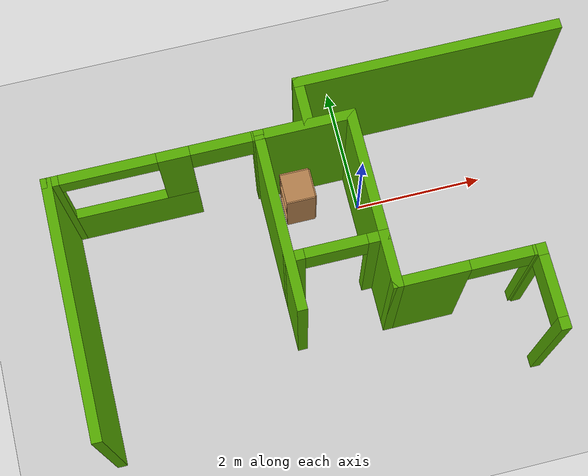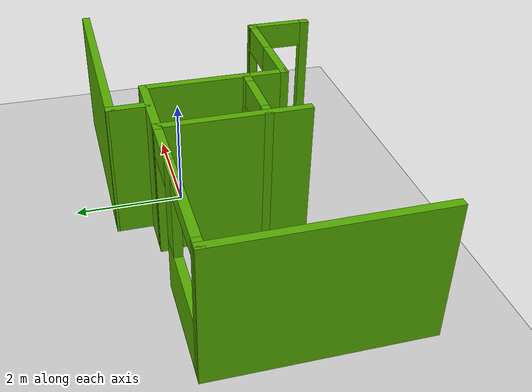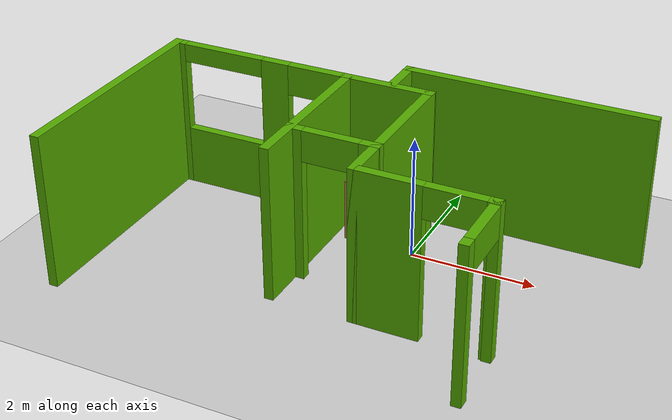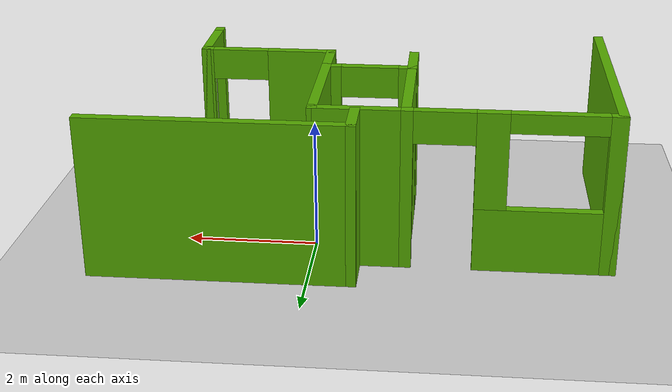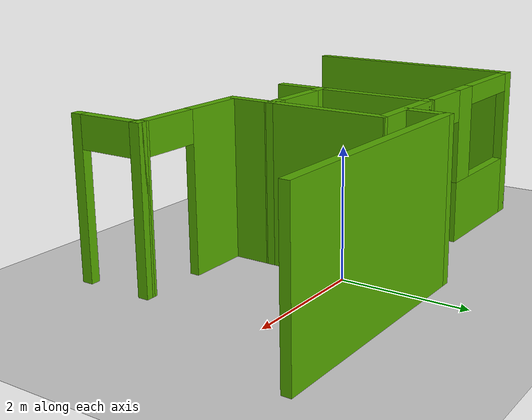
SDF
<sdf version="1.6">
 <world name="default">
  <model name="ground_plane">
   <static>1</static>
   <link name="link">
    <collision name="collision">
     <geometry><plane><normal>0 0 1</normal><size>100 100</size></plane></geometry>
     <surface><friction><ode><mu>100</mu><mu2>50</mu2></ode></friction></surface>
    </collision>
    <visual name="visual">
     <cast_shadows>0</cast_shadows>
     <geometry><plane><normal>0 0 1</normal><size>100 100</size></plane></geometry>
     <material>
      <script><uri>file://media/materials/scripts/gazebo.material</uri><name>Gazebo/Grey</name></script>
     </material>
    </visual>
   </link>
  </model>
  <model name="1floorHouse">
   <link name="Wall_303">
    <pose>-8.69021 3.385 0 0 -0 1.5708</pose>
    <visual name="Wall_303_Visual">
     <pose>0 0 1.25 0 -0 0</pose>
     <geometry><box><size>3.8 0.15 2.5</size></box></geometry>
     <material>
      <script><uri>file://media/materials/scripts/gazebo.material</uri><name>Gazebo/Grey</name></script>
      <ambient>0.333333 0.666667 0 1</ambient>
      <diffuse>0.7 0.7 0.7 1</diffuse>
      <specular>0.01 0.01 0.01 1</specular>
      <emissive>0 0 0 1</emissive>
     </material>
    </visual>
    <collision name="Wall_303_Collision">
     <pose>0 0 1.25 0 -0 0</pose>
     <geometry><box><size>3.8 0.15 2.5</size></box></geometry>
     <surface>
      <friction>
       <ode><mu>1</mu><mu2>1</mu2><fdir1>0 0 0</fdir1><slip1>0</slip1><slip2>0</slip2></ode>
       <torsional>
        <coefficient>1</coefficient>
        <patch_radius>0</patch_radius>
        <surface_radius>0</surface_radius>
        <use_patch_radius>1</use_patch_radius>
        <ode><slip>0</slip></ode>
       </torsional>
      </friction>
      <bounce><restitution_coefficient>0</restitution_coefficient><threshold>1e+06</threshold></bounce>
      <contact>
       <collide_without_contact>0</collide_without_contact>
       <collide_without_contact_bitmask>1</collide_without_contact_bitmask>
       <collide_bitmask>1</collide_bitmask>
       <ode>
        <soft_cfm>0</soft_cfm>
        <soft_erp>0.2</soft_erp>
        <kp>1e+13</kp>
        <kd>1</kd>
        <max_vel>0.01</max_vel>
        <min_depth>0</min_depth>
       </ode>
       <bullet>
        <split_impulse>1</split_impulse>
        <split_impulse_penetration_threshold>-0.01</split_impulse_penetration_threshold>
        <soft_cfm>0</soft_cfm>
        <soft_erp>0.2</soft_erp>
        <kp>1e+13</kp>
        <kd>1</kd>
       </bullet>
      </contact>
     </surface>
    </collision>
   </link>
   <link name="Wall_304">
    <pose>-7.16521 5.21 0 0 -0 0</pose>
    <visual name="Wall_304_Visual_0">
     <pose>-1.47576 0 1.25 0 -0 0</pose>
     <geometry><box><size>0.248475 0.15 2.5</size></box></geometry>
     <material>
      <script><uri>file://media/materials/scripts/gazebo.material</uri><name>Gazebo/Grey</name></script>
      <ambient>0.333333 0.666667 0 1</ambient>
      <diffuse>0.7 0.7 0.7 1</diffuse>
      <specular>0.01 0.01 0.01 1</specular>
      <emissive>0 0 0 1</emissive>
     </material>
    </visual>
    <visual name="Wall_304_Visual_2">
     <pose>-0.414623 0 0.5 0 -0 0</pose>
     <geometry><box><size>1.8738 0.15 1</size></box></geometry>
     <material>
      <script><uri>file://media/materials/scripts/gazebo.material</uri><name>Gazebo/Grey</name></script>
      <ambient>0.333333 0.666667 0 1</ambient>
      <diffuse>0.7 0.7 0.7 1</diffuse>
      <specular>0.01 0.01 0.01 1</specular>
      <emissive>0 0 0 1</emissive>
     </material>
    </visual>
    <visual name="Wall_304_Visual_1">
     <pose>1.51114 0 1.25 0 -0 0</pose>
     <geometry><box><size>0.177722 0.15 2.5</size></box></geometry>
     <material>
      <script><uri>file://media/materials/scripts/gazebo.material</uri><name>Gazebo/Grey</name></script>
      <ambient>0.333333 0.666667 0 1</ambient>
      <diffuse>0.7 0.7 0.7 1</diffuse>
      <specular>0.01 0.01 0.01 1</specular>
      <emissive>0 0 0 1</emissive>
     </material>
    </visual>
    <visual name="Wall_304_Visual_3">
     <pose>0.285377 0 1.75 0 -0 0</pose>
     <geometry><box><size>0.473803 0.15 1.5</size></box></geometry>
     <material>
      <script><uri>file://media/materials/scripts/gazebo.material</uri><name>Gazebo/Grey</name></script>
      <ambient>0.333333 0.666667 0 1</ambient>
      <diffuse>0.7 0.7 0.7 1</diffuse>
      <specular>0.01 0.01 0.01 1</specular>
      <emissive>0 0 0 1</emissive>
     </material>
    </visual>
    <visual name="Wall_304_Visual_4">
     <pose>0.972278 0 2.25 0 -0 0</pose>
     <geometry><box><size>0.9 0.15 0.5</size></box></geometry>
     <material>
      <script><uri>file://media/materials/scripts/gazebo.material</uri><name>Gazebo/Grey</name></script>
      <ambient>0.333333 0.666667 0 1</ambient>
      <diffuse>0.7 0.7 0.7 1</diffuse>
      <specular>0.01 0.01 0.01 1</specular>
      <emissive>0 0 0 1</emissive>
     </material>
    </visual>
    <visual name="Wall_304_Visual_5">
     <pose>-0.651525 0 2.35 0 -0 0</pose>
     <geometry><box><size>1.4 0.15 0.3</size></box></geometry>
     <material>
      <script><uri>file://media/materials/scripts/gazebo.material</uri><name>Gazebo/Grey</name></script>
      <ambient>0.333333 0.666667 0 1</ambient>
      <diffuse>0.7 0.7 0.7 1</diffuse>
      <specular>0.01 0.01 0.01 1</specular>
      <emissive>0 0 0 1</emissive>
     </material>
    </visual>
    <collision name="Wall_304_Collision_0">
     <pose>-1.47576 0 1.25 0 -0 0</pose>
     <geometry><box><size>0.248475 0.15 2.5</size></box></geometry>
     <surface>
      <friction>
       <ode><mu>1</mu><mu2>1</mu2><fdir1>0 0 0</fdir1><slip1>0</slip1><slip2>0</slip2></ode>
       <torsional>
        <coefficient>1</coefficient>
        <patch_radius>0</patch_radius>
        <surface_radius>0</surface_radius>
        <use_patch_radius>1</use_patch_radius>
        <ode><slip>0</slip></ode>
       </torsional>
      </friction>
      <bounce><restitution_coefficient>0</restitution_coefficient><threshold>1e+06</threshold></bounce>
      <contact>
       <collide_without_contact>0</collide_without_contact>
       <collide_without_contact_bitmask>1</collide_without_contact_bitmask>
       <collide_bitmask>1</collide_bitmask>
       <ode>
        <soft_cfm>0</soft_cfm>
        <soft_erp>0.2</soft_erp>
        <kp>1e+13</kp>
        <kd>1</kd>
        <max_vel>0.01</max_vel>
        <min_depth>0</min_depth>
       </ode>
       <bullet>
        <split_impulse>1</split_impulse>
        <split_impulse_penetration_threshold>-0.01</split_impulse_penetration_threshold>
        <soft_cfm>0</soft_cfm>
        <soft_erp>0.2</soft_erp>
        <kp>1e+13</kp>
        <kd>1</kd>
       </bullet>
      </contact>
     </surface>
    </collision>
    <collision name="Wall_304_Collision_1">
     <pose>1.51114 0 1.25 0 -0 0</pose>
     <geometry><box><size>0.177722 0.15 2.5</size></box></geometry>
     <surface>
      <friction>
       <ode><mu>1</mu><mu2>1</mu2><fdir1>0 0 0</fdir1><slip1>0</slip1><slip2>0</slip2></ode>
       <torsional>
        <coefficient>1</coefficient>
        <patch_radius>0</patch_radius>
        <surface_radius>0</surface_radius>
        <use_patch_radius>1</use_patch_radius>
        <ode><slip>0</slip></ode>
       </torsional>
      </friction>
      <bounce><restitution_coefficient>0</restitution_coefficient><threshold>1e+06</threshold></bounce>
      <contact>
       <collide_without_contact>0</collide_without_contact>
       <collide_without_contact_bitmask>1</collide_without_contact_bitmask>
       <collide_bitmask>1</collide_bitmask>
       <ode>
        <soft_cfm>0</soft_cfm>
        <soft_erp>0.2</soft_erp>
        <kp>1e+13</kp>
        <kd>1</kd>
        <max_vel>0.01</max_vel>
        <min_depth>0</min_depth>
       </ode>
       <bullet>
        <split_impulse>1</split_impulse>
        <split_impulse_penetration_threshold>-0.01</split_impulse_penetration_threshold>
        <soft_cfm>0</soft_cfm>
        <soft_erp>0.2</soft_erp>
        <kp>1e+13</kp>
        <kd>1</kd>
       </bullet>
      </contact>
     </surface>
    </collision>
    <collision name="Wall_304_Collision_2">
     <pose>-0.414623 0 0.5 0 -0 0</pose>
     <geometry><box><size>1.8738 0.15 1</size></box></geometry>
     <surface>
      <friction>
       <ode><mu>1</mu><mu2>1</mu2><fdir1>0 0 0</fdir1><slip1>0</slip1><slip2>0</slip2></ode>
       <torsional>
        <coefficient>1</coefficient>
        <patch_radius>0</patch_radius>
        <surface_radius>0</surface_radius>
        <use_patch_radius>1</use_patch_radius>
        <ode><slip>0</slip></ode>
       </torsional>
      </friction>
      <bounce><restitution_coefficient>0</restitution_coefficient><threshold>1e+06</threshold></bounce>
      <contact>
       <collide_without_contact>0</collide_without_contact>
       <collide_without_contact_bitmask>1</collide_without_contact_bitmask>
       <collide_bitmask>1</collide_bitmask>
       <ode>
        <soft_cfm>0</soft_cfm>
        <soft_erp>0.2</soft_erp>
        <kp>1e+13</kp>
        <kd>1</kd>
        <max_vel>0.01</max_vel>
        <min_depth>0</min_depth>
       </ode>
       <bullet>
        <split_impulse>1</split_impulse>
        <split_impulse_penetration_threshold>-0.01</split_impulse_penetration_threshold>
        <soft_cfm>0</soft_cfm>
        <soft_erp>0.2</soft_erp>
        <kp>1e+13</kp>
        <kd>1</kd>
       </bullet>
      </contact>
     </surface>
    </collision>
    <collision name="Wall_304_Collision_3">
     <pose>0.285377 0 1.75 0 -0 0</pose>
     <geometry><box><size>0.473803 0.15 1.5</size></box></geometry>
     <surface>
      <friction>
       <ode><mu>1</mu><mu2>1</mu2><fdir1>0 0 0</fdir1><slip1>0</slip1><slip2>0</slip2></ode>
       <torsional>
        <coefficient>1</coefficient>
        <patch_radius>0</patch_radius>
        <surface_radius>0</surface_radius>
        <use_patch_radius>1</use_patch_radius>
        <ode><slip>0</slip></ode>
       </torsional>
      </friction>
      <bounce><restitution_coefficient>0</restitution_coefficient><threshold>1e+06</threshold></bounce>
      <contact>
       <collide_without_contact>0</collide_without_contact>
       <collide_without_contact_bitmask>1</collide_without_contact_bitmask>
       <collide_bitmask>1</collide_bitmask>
       <ode>
        <soft_cfm>0</soft_cfm>
        <soft_erp>0.2</soft_erp>
        <kp>1e+13</kp>
        <kd>1</kd>
        <max_vel>0.01</max_vel>
        <min_depth>0</min_depth>
       </ode>
       <bullet>
        <split_impulse>1</split_impulse>
        <split_impulse_penetration_threshold>-0.01</split_impulse_penetration_threshold>
        <soft_cfm>0</soft_cfm>
        <soft_erp>0.2</soft_erp>
        <kp>1e+13</kp>
        <kd>1</kd>
       </bullet>
      </contact>
     </surface>
    </collision>
    <collision name="Wall_304_Collision_4">
     <pose>0.972278 0 2.25 0 -0 0</pose>
     <geometry><box><size>0.9 0.15 0.5</size></box></geometry>
     <surface>
      <friction>
       <ode><mu>1</mu><mu2>1</mu2><fdir1>0 0 0</fdir1><slip1>0</slip1><slip2>0</slip2></ode>
       <torsional>
        <coefficient>1</coefficient>
        <patch_radius>0</patch_radius>
        <surface_radius>0</surface_radius>
        <use_patch_radius>1</use_patch_radius>
        <ode><slip>0</slip></ode>
       </torsional>
      </friction>
      <bounce><restitution_coefficient>0</restitution_coefficient><threshold>1e+06</threshold></bounce>
      <contact>
       <collide_without_contact>0</collide_without_contact>
       <collide_without_contact_bitmask>1</collide_without_contact_bitmask>
       <collide_bitmask>1</collide_bitmask>
       <ode>
        <soft_cfm>0</soft_cfm>
        <soft_erp>0.2</soft_erp>
        <kp>1e+13</kp>
        <kd>1</kd>
        <max_vel>0.01</max_vel>
        <min_depth>0</min_depth>
       </ode>
       <bullet>
        <split_impulse>1</split_impulse>
        <split_impulse_penetration_threshold>-0.01</split_impulse_penetration_threshold>
        <soft_cfm>0</soft_cfm>
        <soft_erp>0.2</soft_erp>
        <kp>1e+13</kp>
        <kd>1</kd>
       </bullet>
      </contact>
     </surface>
    </collision>
    <collision name="Wall_304_Collision_5">
     <pose>-0.651525 0 2.35 0 -0 0</pose>
     <geometry><box><size>1.4 0.15 0.3</size></box></geometry>
     <surface>
      <friction>
       <ode><mu>1</mu><mu2>1</mu2><fdir1>0 0 0</fdir1><slip1>0</slip1><slip2>0</slip2></ode>
       <torsional>
        <coefficient>1</coefficient>
        <patch_radius>0</patch_radius>
        <surface_radius>0</surface_radius>
        <use_patch_radius>1</use_patch_radius>
        <ode><slip>0</slip></ode>
       </torsional>
      </friction>
      <bounce><restitution_coefficient>0</restitution_coefficient><threshold>1e+06</threshold></bounce>
      <contact>
       <collide_without_contact>0</collide_without_contact>
       <collide_without_contact_bitmask>1</collide_without_contact_bitmask>
       <collide_bitmask>1</collide_bitmask>
       <ode>
        <soft_cfm>0</soft_cfm>
        <soft_erp>0.2</soft_erp>
        <kp>1e+13</kp>
        <kd>1</kd>
        <max_vel>0.01</max_vel>
        <min_depth>0</min_depth>
       </ode>
       <bullet>
        <split_impulse>1</split_impulse>
        <split_impulse_penetration_threshold>-0.01</split_impulse_penetration_threshold>
        <soft_cfm>0</soft_cfm>
        <soft_erp>0.2</soft_erp>
        <kp>1e+13</kp>
        <kd>1</kd>
       </bullet>
      </contact>
     </surface>
    </collision>
   </link>
   <link name="Wall_305">
    <pose>-5.6402 3.935 0 0 0 -1.5708</pose>
    <visual name="Wall_305_Visual">
     <pose>0 0 1.25 0 -0 0</pose>
     <geometry><box><size>2.7 0.15 2.5</size></box></geometry>
     <material>
      <script><uri>file://media/materials/scripts/gazebo.material</uri><name>Gazebo/Grey</name></script>
      <ambient>0.333333 0.666667 0 1</ambient>
      <diffuse>0.7 0.7 0.7 1</diffuse>
      <specular>0.01 0.01 0.01 1</specular>
      <emissive>0 0 0 1</emissive>
     </material>
    </visual>
    <collision name="Wall_305_Collision">
     <pose>0 0 1.25 0 -0 0</pose>
     <geometry><box><size>2.7 0.15 2.5</size></box></geometry>
     <surface>
      <friction>
       <ode><mu>1</mu><mu2>1</mu2><fdir1>0 0 0</fdir1><slip1>0</slip1><slip2>0</slip2></ode>
       <torsional>
        <coefficient>1</coefficient>
        <patch_radius>0</patch_radius>
        <surface_radius>0</surface_radius>
        <use_patch_radius>1</use_patch_radius>
        <ode><slip>0</slip></ode>
       </torsional>
      </friction>
      <bounce><restitution_coefficient>0</restitution_coefficient><threshold>1e+06</threshold></bounce>
      <contact>
       <collide_without_contact>0</collide_without_contact>
       <collide_without_contact_bitmask>1</collide_without_contact_bitmask>
       <collide_bitmask>1</collide_bitmask>
       <ode>
        <soft_cfm>0</soft_cfm>
        <soft_erp>0.2</soft_erp>
        <kp>1e+13</kp>
        <kd>1</kd>
        <max_vel>0.01</max_vel>
        <min_depth>0</min_depth>
       </ode>
       <bullet>
        <split_impulse>1</split_impulse>
        <split_impulse_penetration_threshold>-0.01</split_impulse_penetration_threshold>
        <soft_cfm>0</soft_cfm>
        <soft_erp>0.2</soft_erp>
        <kp>1e+13</kp>
        <kd>1</kd>
       </bullet>
      </contact>
     </surface>
    </collision>
   </link>
   <link name="Wall_306">
    <pose>-4.96521 5.21 0 0 -0 0</pose>
    <visual name="Wall_306_Visual">
     <pose>0 0 1.25 0 -0 0</pose>
     <geometry><box><size>1.5 0.15 2.5</size></box></geometry>
     <material>
      <script><uri>file://media/materials/scripts/gazebo.material</uri><name>Gazebo/Grey</name></script>
      <ambient>0.333333 0.666667 0 1</ambient>
      <diffuse>0.7 0.7 0.7 1</diffuse>
      <specular>0.01 0.01 0.01 1</specular>
      <emissive>0 0 0 1</emissive>
     </material>
    </visual>
    <collision name="Wall_306_Collision">
     <pose>0 0 1.25 0 -0 0</pose>
     <geometry><box><size>1.5 0.15 2.5</size></box></geometry>
     <surface>
      <friction>
       <ode><mu>1</mu><mu2>1</mu2><fdir1>0 0 0</fdir1><slip1>0</slip1><slip2>0</slip2></ode>
       <torsional>
        <coefficient>1</coefficient>
        <patch_radius>0</patch_radius>
        <surface_radius>0</surface_radius>
        <use_patch_radius>1</use_patch_radius>
        <ode><slip>0</slip></ode>
       </torsional>
      </friction>
      <bounce><restitution_coefficient>0</restitution_coefficient><threshold>1e+06</threshold></bounce>
      <contact>
       <collide_without_contact>0</collide_without_contact>
       <collide_without_contact_bitmask>1</collide_without_contact_bitmask>
       <collide_bitmask>1</collide_bitmask>
       <ode>
        <soft_cfm>0</soft_cfm>
        <soft_erp>0.2</soft_erp>
        <kp>1e+13</kp>
        <kd>1</kd>
        <max_vel>0.01</max_vel>
        <min_depth>0</min_depth>
       </ode>
       <bullet>
        <split_impulse>1</split_impulse>
        <split_impulse_penetration_threshold>-0.01</split_impulse_penetration_threshold>
        <soft_cfm>0</soft_cfm>
        <soft_erp>0.2</soft_erp>
        <kp>1e+13</kp>
        <kd>1</kd>
       </bullet>
      </contact>
     </surface>
    </collision>
   </link>
   <link name="Wall_307">
    <pose>-4.29 4.285 0 0 0 -1.57058</pose>
    <visual name="Wall_307_Visual">
     <pose>0 0 1.25 0 -0 0</pose>
     <geometry><box><size>2 0.15 2.5</size></box></geometry>
     <material>
      <script><uri>file://media/materials/scripts/gazebo.material</uri><name>Gazebo/Grey</name></script>
      <ambient>0.333333 0.666667 0 1</ambient>
      <diffuse>0.7 0.7 0.7 1</diffuse>
      <specular>0.01 0.01 0.01 1</specular>
      <emissive>0 0 0 1</emissive>
     </material>
    </visual>
    <collision name="Wall_307_Collision">
     <pose>0 0 1.25 0 -0 0</pose>
     <geometry><box><size>2 0.15 2.5</size></box></geometry>
     <surface>
      <friction>
       <ode><mu>1</mu><mu2>1</mu2><fdir1>0 0 0</fdir1><slip1>0</slip1><slip2>0</slip2></ode>
       <torsional>
        <coefficient>1</coefficient>
        <patch_radius>0</patch_radius>
        <surface_radius>0</surface_radius>
        <use_patch_radius>1</use_patch_radius>
        <ode><slip>0</slip></ode>
       </torsional>
      </friction>
      <bounce><restitution_coefficient>0</restitution_coefficient><threshold>1e+06</threshold></bounce>
      <contact>
       <collide_without_contact>0</collide_without_contact>
       <collide_without_contact_bitmask>1</collide_without_contact_bitmask>
       <collide_bitmask>1</collide_bitmask>
       <ode>
        <soft_cfm>0</soft_cfm>
        <soft_erp>0.2</soft_erp>
        <kp>1e+13</kp>
        <kd>1</kd>
        <max_vel>0.01</max_vel>
        <min_depth>0</min_depth>
       </ode>
       <bullet>
        <split_impulse>1</split_impulse>
        <split_impulse_penetration_threshold>-0.01</split_impulse_penetration_threshold>
        <soft_cfm>0</soft_cfm>
        <soft_erp>0.2</soft_erp>
        <kp>1e+13</kp>
        <kd>1</kd>
       </bullet>
      </contact>
     </surface>
    </collision>
   </link>
   <link name="Wall_308">
    <pose>-4.965 3.36 0 0 -0 3.14159</pose>
    <visual name="Wall_308_Visual_0">
     <pose>-0.593035 0 1.25 0 -0 0</pose>
     <geometry><box><size>0.314339 0.15 2.5</size></box></geometry>
     <material>
      <script><uri>file://media/materials/scripts/gazebo.material</uri><name>Gazebo/Grey</name></script>
      <ambient>0.333333 0.666667 0 1</ambient>
      <diffuse>0.7 0.7 0.7 1</diffuse>
      <specular>0.01 0.01 0.01 1</specular>
      <emissive>0 0 0 1</emissive>
     </material>
    </visual>
    <visual name="Wall_308_Visual_1">
     <pose>0.607169 0 1.25 0 -0 0</pose>
     <geometry><box><size>0.286071 0.15 2.5</size></box></geometry>
     <material>
      <script><uri>file://media/materials/scripts/gazebo.material</uri><name>Gazebo/Grey</name></script>
      <ambient>0.333333 0.666667 0 1</ambient>
      <diffuse>0.7 0.7 0.7 1</diffuse>
      <specular>0.01 0.01 0.01 1</specular>
      <emissive>0 0 0 1</emissive>
     </material>
    </visual>
    <visual name="Wall_308_Visual_2">
     <pose>0.014134 0 2.25 0 -0 0</pose>
     <geometry><box><size>0.9 0.15 0.5</size></box></geometry>
     <material>
      <script><uri>file://media/materials/scripts/gazebo.material</uri><name>Gazebo/Grey</name></script>
      <ambient>0.333333 0.666667 0 1</ambient>
      <diffuse>0.7 0.7 0.7 1</diffuse>
      <specular>0.01 0.01 0.01 1</specular>
      <emissive>0 0 0 1</emissive>
     </material>
    </visual>
    <collision name="Wall_308_Collision_0">
     <pose>-0.593035 0 1.25 0 -0 0</pose>
     <geometry><box><size>0.314339 0.15 2.5</size></box></geometry>
     <surface>
      <friction>
       <ode><mu>1</mu><mu2>1</mu2><fdir1>0 0 0</fdir1><slip1>0</slip1><slip2>0</slip2></ode>
       <torsional>
        <coefficient>1</coefficient>
        <patch_radius>0</patch_radius>
        <surface_radius>0</surface_radius>
        <use_patch_radius>1</use_patch_radius>
        <ode><slip>0</slip></ode>
       </torsional>
      </friction>
      <bounce><restitution_coefficient>0</restitution_coefficient><threshold>1e+06</threshold></bounce>
      <contact>
       <collide_without_contact>0</collide_without_contact>
       <collide_without_contact_bitmask>1</collide_without_contact_bitmask>
       <collide_bitmask>1</collide_bitmask>
       <ode>
        <soft_cfm>0</soft_cfm>
        <soft_erp>0.2</soft_erp>
        <kp>1e+13</kp>
        <kd>1</kd>
        <max_vel>0.01</max_vel>
        <min_depth>0</min_depth>
       </ode>
       <bullet>
        <split_impulse>1</split_impulse>
        <split_impulse_penetration_threshold>-0.01</split_impulse_penetration_threshold>
        <soft_cfm>0</soft_cfm>
        <soft_erp>0.2</soft_erp>
        <kp>1e+13</kp>
        <kd>1</kd>
       </bullet>
      </contact>
     </surface>
    </collision>
    <collision name="Wall_308_Collision_1">
     <pose>0.607169 0 1.25 0 -0 0</pose>
     <geometry><box><size>0.286071 0.15 2.5</size></box></geometry>
     <surface>
      <friction>
       <ode><mu>1</mu><mu2>1</mu2><fdir1>0 0 0</fdir1><slip1>0</slip1><slip2>0</slip2></ode>
       <torsional>
        <coefficient>1</coefficient>
        <patch_radius>0</patch_radius>
        <surface_radius>0</surface_radius>
        <use_patch_radius>1</use_patch_radius>
        <ode><slip>0</slip></ode>
       </torsional>
      </friction>
      <bounce><restitution_coefficient>0</restitution_coefficient><threshold>1e+06</threshold></bounce>
      <contact>
       <collide_without_contact>0</collide_without_contact>
       <collide_without_contact_bitmask>1</collide_without_contact_bitmask>
       <collide_bitmask>1</collide_bitmask>
       <ode>
        <soft_cfm>0</soft_cfm>
        <soft_erp>0.2</soft_erp>
        <kp>1e+13</kp>
        <kd>1</kd>
        <max_vel>0.01</max_vel>
        <min_depth>0</min_depth>
       </ode>
       <bullet>
        <split_impulse>1</split_impulse>
        <split_impulse_penetration_threshold>-0.01</split_impulse_penetration_threshold>
        <soft_cfm>0</soft_cfm>
        <soft_erp>0.2</soft_erp>
        <kp>1e+13</kp>
        <kd>1</kd>
       </bullet>
      </contact>
     </surface>
    </collision>
    <collision name="Wall_308_Collision_2">
     <pose>0.014134 0 2.25 0 -0 0</pose>
     <geometry><box><size>0.9 0.15 0.5</size></box></geometry>
     <surface>
      <friction>
       <ode><mu>1</mu><mu2>1</mu2><fdir1>0 0 0</fdir1><slip1>0</slip1><slip2>0</slip2></ode>
       <torsional>
        <coefficient>1</coefficient>
        <patch_radius>0</patch_radius>
        <surface_radius>0</surface_radius>
        <use_patch_radius>1</use_patch_radius>
        <ode><slip>0</slip></ode>
       </torsional>
      </friction>
      <bounce><restitution_coefficient>0</restitution_coefficient><threshold>1e+06</threshold></bounce>
      <contact>
       <collide_without_contact>0</collide_without_contact>
       <collide_without_contact_bitmask>1</collide_without_contact_bitmask>
       <collide_bitmask>1</collide_bitmask>
       <ode>
        <soft_cfm>0</soft_cfm>
        <soft_erp>0.2</soft_erp>
        <kp>1e+13</kp>
        <kd>1</kd>
        <max_vel>0.01</max_vel>
        <min_depth>0</min_depth>
       </ode>
       <bullet>
        <split_impulse>1</split_impulse>
        <split_impulse_penetration_threshold>-0.01</split_impulse_penetration_threshold>
        <soft_cfm>0</soft_cfm>
        <soft_erp>0.2</soft_erp>
        <kp>1e+13</kp>
        <kd>1</kd>
       </bullet>
      </contact>
     </surface>
    </collision>
   </link>
   <link name="Wall_309">
    <pose>-4.28979 3.01 0 0 0 -1.5708</pose>
    <visual name="Wall_309_Visual">
     <pose>0 0 1.25 0 -0 0</pose>
     <geometry><box><size>0.85 0.15 2.5</size></box></geometry>
     <material>
      <script><uri>file://media/materials/scripts/gazebo.material</uri><name>Gazebo/Grey</name></script>
      <ambient>0.333333 0.666667 0 1</ambient>
      <diffuse>0.7 0.7 0.7 1</diffuse>
      <specular>0.01 0.01 0.01 1</specular>
      <emissive>0 0 0 1</emissive>
     </material>
    </visual>
    <collision name="Wall_309_Collision">
     <pose>0 0 1.25 0 -0 0</pose>
     <geometry><box><size>0.85 0.15 2.5</size></box></geometry>
     <surface>
      <friction>
       <ode><mu>1</mu><mu2>1</mu2><fdir1>0 0 0</fdir1><slip1>0</slip1><slip2>0</slip2></ode>
       <torsional>
        <coefficient>1</coefficient>
        <patch_radius>0</patch_radius>
        <surface_radius>0</surface_radius>
        <use_patch_radius>1</use_patch_radius>
        <ode><slip>0</slip></ode>
       </torsional>
      </friction>
      <bounce><restitution_coefficient>0</restitution_coefficient><threshold>1e+06</threshold></bounce>
      <contact>
       <collide_without_contact>0</collide_without_contact>
       <collide_without_contact_bitmask>1</collide_without_contact_bitmask>
       <collide_bitmask>1</collide_bitmask>
       <ode>
        <soft_cfm>0</soft_cfm>
        <soft_erp>0.2</soft_erp>
        <kp>1e+13</kp>
        <kd>1</kd>
        <max_vel>0.01</max_vel>
        <min_depth>0</min_depth>
       </ode>
       <bullet>
        <split_impulse>1</split_impulse>
        <split_impulse_penetration_threshold>-0.01</split_impulse_penetration_threshold>
        <soft_cfm>0</soft_cfm>
        <soft_erp>0.2</soft_erp>
        <kp>1e+13</kp>
        <kd>1</kd>
       </bullet>
      </contact>
     </surface>
    </collision>
   </link>
   <link name="Wall_310">
    <pose>-3.2648 2.66 0 0 -0 0</pose>
    <visual name="Wall_310_Visual_0">
     <pose>-0.547035 0 1.25 0 -0 0</pose>
     <geometry><box><size>1.10593 0.15 2.5</size></box></geometry>
     <material>
      <script><uri>file://media/materials/scripts/gazebo.material</uri><name>Gazebo/Grey</name></script>
      <ambient>0.333333 0.666667 0 1</ambient>
      <diffuse>0.7 0.7 0.7 1</diffuse>
      <specular>0.01 0.01 0.01 1</specular>
      <emissive>0 0 0 1</emissive>
     </material>
    </visual>
    <visual name="Wall_310_Visual_1">
     <pose>1.00297 0 1.25 0 -0 0</pose>
     <geometry><box><size>0.194069 0.15 2.5</size></box></geometry>
     <material>
      <script><uri>file://media/materials/scripts/gazebo.material</uri><name>Gazebo/Grey</name></script>
      <ambient>0.333333 0.666667 0 1</ambient>
      <diffuse>0.7 0.7 0.7 1</diffuse>
      <specular>0.01 0.01 0.01 1</specular>
      <emissive>0 0 0 1</emissive>
     </material>
    </visual>
    <visual name="Wall_310_Visual_2">
     <pose>0.455931 0 2.25 0 -0 0</pose>
     <geometry><box><size>0.9 0.15 0.5</size></box></geometry>
     <material>
      <script><uri>file://media/materials/scripts/gazebo.material</uri><name>Gazebo/Grey</name></script>
      <ambient>0.333333 0.666667 0 1</ambient>
      <diffuse>0.7 0.7 0.7 1</diffuse>
      <specular>0.01 0.01 0.01 1</specular>
      <emissive>0 0 0 1</emissive>
     </material>
    </visual>
    <collision name="Wall_310_Collision_0">
     <pose>-0.547035 0 1.25 0 -0 0</pose>
     <geometry><box><size>1.10593 0.15 2.5</size></box></geometry>
     <surface>
      <friction>
       <ode><mu>1</mu><mu2>1</mu2><fdir1>0 0 0</fdir1><slip1>0</slip1><slip2>0</slip2></ode>
       <torsional>
        <coefficient>1</coefficient>
        <patch_radius>0</patch_radius>
        <surface_radius>0</surface_radius>
        <use_patch_radius>1</use_patch_radius>
        <ode><slip>0</slip></ode>
       </torsional>
      </friction>
      <bounce><restitution_coefficient>0</restitution_coefficient><threshold>1e+06</threshold></bounce>
      <contact>
       <collide_without_contact>0</collide_without_contact>
       <collide_without_contact_bitmask>1</collide_without_contact_bitmask>
       <collide_bitmask>1</collide_bitmask>
       <ode>
        <soft_cfm>0</soft_cfm>
        <soft_erp>0.2</soft_erp>
        <kp>1e+13</kp>
        <kd>1</kd>
        <max_vel>0.01</max_vel>
        <min_depth>0</min_depth>
       </ode>
       <bullet>
        <split_impulse>1</split_impulse>
        <split_impulse_penetration_threshold>-0.01</split_impulse_penetration_threshold>
        <soft_cfm>0</soft_cfm>
        <soft_erp>0.2</soft_erp>
        <kp>1e+13</kp>
        <kd>1</kd>
       </bullet>
      </contact>
     </surface>
    </collision>
    <collision name="Wall_310_Collision_1">
     <pose>1.00297 0 1.25 0 -0 0</pose>
     <geometry><box><size>0.194069 0.15 2.5</size></box></geometry>
     <surface>
      <friction>
       <ode><mu>1</mu><mu2>1</mu2><fdir1>0 0 0</fdir1><slip1>0</slip1><slip2>0</slip2></ode>
       <torsional>
        <coefficient>1</coefficient>
        <patch_radius>0</patch_radius>
        <surface_radius>0</surface_radius>
        <use_patch_radius>1</use_patch_radius>
        <ode><slip>0</slip></ode>
       </torsional>
      </friction>
      <bounce><restitution_coefficient>0</restitution_coefficient><threshold>1e+06</threshold></bounce>
      <contact>
       <collide_without_contact>0</collide_without_contact>
       <collide_without_contact_bitmask>1</collide_without_contact_bitmask>
       <collide_bitmask>1</collide_bitmask>
       <ode>
        <soft_cfm>0</soft_cfm>
        <soft_erp>0.2</soft_erp>
        <kp>1e+13</kp>
        <kd>1</kd>
        <max_vel>0.01</max_vel>
        <min_depth>0</min_depth>
       </ode>
       <bullet>
        <split_impulse>1</split_impulse>
        <split_impulse_penetration_threshold>-0.01</split_impulse_penetration_threshold>
        <soft_cfm>0</soft_cfm>
        <soft_erp>0.2</soft_erp>
        <kp>1e+13</kp>
        <kd>1</kd>
       </bullet>
      </contact>
     </surface>
    </collision>
    <collision name="Wall_310_Collision_2">
     <pose>0.455931 0 2.25 0 -0 0</pose>
     <geometry><box><size>0.9 0.15 0.5</size></box></geometry>
     <surface>
      <friction>
       <ode><mu>1</mu><mu2>1</mu2><fdir1>0 0 0</fdir1><slip1>0</slip1><slip2>0</slip2></ode>
       <torsional>
        <coefficient>1</coefficient>
        <patch_radius>0</patch_radius>
        <surface_radius>0</surface_radius>
        <use_patch_radius>1</use_patch_radius>
        <ode><slip>0</slip></ode>
       </torsional>
      </friction>
      <bounce><restitution_coefficient>0</restitution_coefficient><threshold>1e+06</threshold></bounce>
      <contact>
       <collide_without_contact>0</collide_without_contact>
       <collide_without_contact_bitmask>1</collide_without_contact_bitmask>
       <collide_bitmask>1</collide_bitmask>
       <ode>
        <soft_cfm>0</soft_cfm>
        <soft_erp>0.2</soft_erp>
        <kp>1e+13</kp>
        <kd>1</kd>
        <max_vel>0.01</max_vel>
        <min_depth>0</min_depth>
       </ode>
       <bullet>
        <split_impulse>1</split_impulse>
        <split_impulse_penetration_threshold>-0.01</split_impulse_penetration_threshold>
        <soft_cfm>0</soft_cfm>
        <soft_erp>0.2</soft_erp>
        <kp>1e+13</kp>
        <kd>1</kd>
       </bullet>
      </contact>
     </surface>
    </collision>
   </link>
   <link name="Wall_311">
    <pose>-2.23979 2.11 0 0 0 -1.5708</pose>
    <visual name="Wall_311_Visual_0">
     <pose>-0.539157 0 1.25 0 -0 0</pose>
     <geometry><box><size>0.171686 0.15 2.5</size></box></geometry>
     <material>
      <script><uri>file://media/materials/scripts/gazebo.material</uri><name>Gazebo/Grey</name></script>
      <ambient>0.333333 0.666667 0 1</ambient>
      <diffuse>0.7 0.7 0.7 1</diffuse>
      <specular>0.01 0.01 0.01 1</specular>
      <emissive>0 0 0 1</emissive>
     </material>
    </visual>
    <visual name="Wall_311_Visual_1">
     <pose>0.535843 0 1.25 0 -0 0</pose>
     <geometry><box><size>0.178314 0.15 2.5</size></box></geometry>
     <material>
      <script><uri>file://media/materials/scripts/gazebo.material</uri><name>Gazebo/Grey</name></script>
      <ambient>0.333333 0.666667 0 1</ambient>
      <diffuse>0.7 0.7 0.7 1</diffuse>
      <specular>0.01 0.01 0.01 1</specular>
      <emissive>0 0 0 1</emissive>
     </material>
    </visual>
    <visual name="Wall_311_Visual_2">
     <pose>-0.003314 0 2.25 0 -0 0</pose>
     <geometry><box><size>0.9 0.15 0.5</size></box></geometry>
     <material>
      <script><uri>file://media/materials/scripts/gazebo.material</uri><name>Gazebo/Grey</name></script>
      <ambient>0.333333 0.666667 0 1</ambient>
      <diffuse>0.7 0.7 0.7 1</diffuse>
      <specular>0.01 0.01 0.01 1</specular>
      <emissive>0 0 0 1</emissive>
     </material>
    </visual>
    <collision name="Wall_311_Collision_1">
     <pose>0.535843 0 1.25 0 -0 0</pose>
     <geometry><box><size>0.178314 0.15 2.5</size></box></geometry>
     <surface>
      <friction>
       <ode><mu>1</mu><mu2>1</mu2><fdir1>0 0 0</fdir1><slip1>0</slip1><slip2>0</slip2></ode>
       <torsional>
        <coefficient>1</coefficient>
        <patch_radius>0</patch_radius>
        <surface_radius>0</surface_radius>
        <use_patch_radius>1</use_patch_radius>
        <ode><slip>0</slip></ode>
       </torsional>
      </friction>
      <bounce><restitution_coefficient>0</restitution_coefficient><threshold>1e+06</threshold></bounce>
      <contact>
       <collide_without_contact>0</collide_without_contact>
       <collide_without_contact_bitmask>1</collide_without_contact_bitmask>
       <collide_bitmask>1</collide_bitmask>
       <ode>
        <soft_cfm>0</soft_cfm>
        <soft_erp>0.2</soft_erp>
        <kp>1e+13</kp>
        <kd>1</kd>
        <max_vel>0.01</max_vel>
        <min_depth>0</min_depth>
       </ode>
       <bullet>
        <split_impulse>1</split_impulse>
        <split_impulse_penetration_threshold>-0.01</split_impulse_penetration_threshold>
        <soft_cfm>0</soft_cfm>
        <soft_erp>0.2</soft_erp>
        <kp>1e+13</kp>
        <kd>1</kd>
       </bullet>
      </contact>
     </surface>
    </collision>
    <collision name="Wall_311_Collision_0">
     <pose>-0.539157 0 1.25 0 -0 0</pose>
     <geometry><box><size>0.171686 0.15 2.5</size></box></geometry>
     <surface>
      <friction>
       <ode><mu>1</mu><mu2>1</mu2><fdir1>0 0 0</fdir1><slip1>0</slip1><slip2>0</slip2></ode>
       <torsional>
        <coefficient>1</coefficient>
        <patch_radius>0</patch_radius>
        <surface_radius>0</surface_radius>
        <use_patch_radius>1</use_patch_radius>
        <ode><slip>0</slip></ode>
       </torsional>
      </friction>
      <bounce><restitution_coefficient>0</restitution_coefficient><threshold>1e+06</threshold></bounce>
      <contact>
       <collide_without_contact>0</collide_without_contact>
       <collide_without_contact_bitmask>1</collide_without_contact_bitmask>
       <collide_bitmask>1</collide_bitmask>
       <ode>
        <soft_cfm>0</soft_cfm>
        <soft_erp>0.2</soft_erp>
        <kp>1e+13</kp>
        <kd>1</kd>
        <max_vel>0.01</max_vel>
        <min_depth>0</min_depth>
       </ode>
       <bullet>
        <split_impulse>1</split_impulse>
        <split_impulse_penetration_threshold>-0.01</split_impulse_penetration_threshold>
        <soft_cfm>0</soft_cfm>
        <soft_erp>0.2</soft_erp>
        <kp>1e+13</kp>
        <kd>1</kd>
       </bullet>
      </contact>
     </surface>
    </collision>
    <collision name="Wall_311_Collision_2">
     <pose>-0.003314 0 2.25 0 -0 0</pose>
     <geometry><box><size>0.9 0.15 0.5</size></box></geometry>
     <surface>
      <friction>
       <ode><mu>1</mu><mu2>1</mu2><fdir1>0 0 0</fdir1><slip1>0</slip1><slip2>0</slip2></ode>
       <torsional>
        <coefficient>1</coefficient>
        <patch_radius>0</patch_radius>
        <surface_radius>0</surface_radius>
        <use_patch_radius>1</use_patch_radius>
        <ode><slip>0</slip></ode>
       </torsional>
      </friction>
      <bounce><restitution_coefficient>0</restitution_coefficient><threshold>1e+06</threshold></bounce>
      <contact>
       <collide_without_contact>0</collide_without_contact>
       <collide_without_contact_bitmask>1</collide_without_contact_bitmask>
       <collide_bitmask>1</collide_bitmask>
       <ode>
        <soft_cfm>0</soft_cfm>
        <soft_erp>0.2</soft_erp>
        <kp>1e+13</kp>
        <kd>1</kd>
        <max_vel>0.01</max_vel>
        <min_depth>0</min_depth>
       </ode>
       <bullet>
        <split_impulse>1</split_impulse>
        <split_impulse_penetration_threshold>-0.01</split_impulse_penetration_threshold>
        <soft_cfm>0</soft_cfm>
        <soft_erp>0.2</soft_erp>
        <kp>1e+13</kp>
        <kd>1</kd>
       </bullet>
      </contact>
     </surface>
    </collision>
   </link>
   <link name="Wall_318">
    <pose>-2.98475 5.8698 0 0 0 -3.14149</pose>
    <visual name="Wall_318_Visual">
     <pose>0 0 1.25 0 -0 0</pose>
     <geometry><box><size>3.99991 0.15 2.5</size></box></geometry>
     <material>
      <script><uri>file://media/materials/scripts/gazebo.material</uri><name>Gazebo/Grey</name></script>
      <ambient>0.333333 0.666667 0 1</ambient>
      <diffuse>0.7 0.7 0.7 1</diffuse>
      <specular>0.01 0.01 0.01 1</specular>
      <emissive>0 0 0 1</emissive>
     </material>
    </visual>
    <collision name="Wall_318_Collision">
     <pose>0 0 1.25 0 -0 0</pose>
     <geometry><box><size>3.99991 0.15 2.5</size></box></geometry>
     <surface>
      <friction>
       <ode><mu>1</mu><mu2>1</mu2><fdir1>0 0 0</fdir1><slip1>0</slip1><slip2>0</slip2></ode>
       <torsional>
        <coefficient>1</coefficient>
        <patch_radius>0</patch_radius>
        <surface_radius>0</surface_radius>
        <use_patch_radius>1</use_patch_radius>
        <ode><slip>0</slip></ode>
       </torsional>
      </friction>
      <bounce><restitution_coefficient>0</restitution_coefficient><threshold>1e+06</threshold></bounce>
      <contact>
       <collide_without_contact>0</collide_without_contact>
       <collide_without_contact_bitmask>1</collide_without_contact_bitmask>
       <collide_bitmask>1</collide_bitmask>
       <ode>
        <soft_cfm>0</soft_cfm>
        <soft_erp>0.2</soft_erp>
        <kp>1e+13</kp>
        <kd>1</kd>
        <max_vel>0.01</max_vel>
        <min_depth>0</min_depth>
       </ode>
       <bullet>
        <split_impulse>1</split_impulse>
        <split_impulse_penetration_threshold>-0.01</split_impulse_penetration_threshold>
        <soft_cfm>0</soft_cfm>
        <soft_erp>0.2</soft_erp>
        <kp>1e+13</kp>
        <kd>1</kd>
       </bullet>
      </contact>
     </surface>
    </collision>
   </link>
   <link name="Wall_319">
    <pose>-4.90971 5.56961 0 0 0 -1.5708</pose>
    <visual name="Wall_319_Visual">
     <pose>0 0 1.25 0 -0 0</pose>
     <geometry><box><size>0.75 0.15 2.5</size></box></geometry>
     <material>
      <script><uri>file://media/materials/scripts/gazebo.material</uri><name>Gazebo/Grey</name></script>
      <ambient>0.333333 0.666667 0 1</ambient>
      <diffuse>0.7 0.7 0.7 1</diffuse>
      <specular>0.01 0.01 0.01 1</specular>
      <emissive>0 0 0 1</emissive>
     </material>
    </visual>
    <collision name="Wall_319_Collision">
     <pose>0 0 1.25 0 -0 0</pose>
     <geometry><box><size>0.75 0.15 2.5</size></box></geometry>
     <surface>
      <friction>
       <ode><mu>1</mu><mu2>1</mu2><fdir1>0 0 0</fdir1><slip1>0</slip1><slip2>0</slip2></ode>
       <torsional>
        <coefficient>1</coefficient>
        <patch_radius>0</patch_radius>
        <surface_radius>0</surface_radius>
        <use_patch_radius>1</use_patch_radius>
        <ode><slip>0</slip></ode>
       </torsional>
      </friction>
      <bounce><restitution_coefficient>0</restitution_coefficient><threshold>1e+06</threshold></bounce>
      <contact>
       <collide_without_contact>0</collide_without_contact>
       <collide_without_contact_bitmask>1</collide_without_contact_bitmask>
       <collide_bitmask>1</collide_bitmask>
       <ode>
        <soft_cfm>0</soft_cfm>
        <soft_erp>0.2</soft_erp>
        <kp>1e+13</kp>
        <kd>1</kd>
        <max_vel>0.01</max_vel>
        <min_depth>0</min_depth>
       </ode>
       <bullet>
        <split_impulse>1</split_impulse>
        <split_impulse_penetration_threshold>-0.01</split_impulse_penetration_threshold>
        <soft_cfm>0</soft_cfm>
        <soft_erp>0.2</soft_erp>
        <kp>1e+13</kp>
        <kd>1</kd>
       </bullet>
      </contact>
     </surface>
    </collision>
   </link>
   <static>1</static>
   <pose>4.2533 -4.6154 0 0 -0 0</pose>
  </model>
  <model name="cabinet_0">
   <static>1</static>
   <link name="cabinet_bottom_plate">
    <inertial>
     <pose>0 0 -1 0 -0 0</pose>
     <inertia><ixx>2.05</ixx><ixy>0</ixy><ixz>0</ixz><iyy>2.05</iyy><iyz>0</iyz><izz>2.05</izz></inertia>
     <mass>25</mass>
    </inertial>
    <collision name="cabinet_bottom_plate_geom">
     <pose>0 0 0.01 0 -0 0</pose>
     <geometry><box><size>0.45 0.45 0.02</size></box></geometry>
    </collision>
    <visual name="cabinet_bottom_plate_geom_visual">
     <pose>0 0 0.01 0 -0 0</pose>
     <geometry><box><size>0.45 0.45 0.02</size></box></geometry>
     <material>
      <script><uri>file://media/materials/scripts/gazebo.material</uri><name>Gazebo/Wood</name></script>
     </material>
    </visual>
    <collision name="cabinet_bottom_plate_geom_cabinet_back_plate">
     <pose>0.235 0 0.51 0 -0 0</pose>
     <geometry><box><size>0.02 0.45 1.02</size></box></geometry>
    </collision>
    <visual name="cabinet_bottom_plate_geom_cabinet_back_plate_visual">
     <pose>0.235 0 0.51 0 -0 0</pose>
     <geometry><box><size>0.02 0.45 1.02</size></box></geometry>
     <material>
      <script><uri>file://media/materials/scripts/gazebo.material</uri><name>Gazebo/Wood</name></script>
     </material>
    </visual>
    <collision name="cabinet_bottom_plate_geom_cabinet_left_plate">
     <pose>0 0.235 0.51 0 -0 0</pose>
     <geometry><box><size>0.45 0.02 1.02</size></box></geometry>
    </collision>
    <visual name="cabinet_bottom_plate_geom_cabinet_left_plate_visual">
     <pose>0 0.235 0.51 0 -0 0</pose>
     <geometry><box><size>0.45 0.02 1.02</size></box></geometry>
     <material>
      <script><uri>file://media/materials/scripts/gazebo.material</uri><name>Gazebo/Wood</name></script>
     </material>
    </visual>
    <collision name="cabinet_bottom_plate_geom_cabinet_middle_plate">
     <pose>0 0 0.51 0 -0 0</pose>
     <geometry><box><size>0.45 0.45 0.02</size></box></geometry>
    </collision>
    <visual name="cabinet_bottom_plate_geom_cabinet_middle_plate_visual">
     <pose>0 0 0.51 0 -0 0</pose>
     <geometry><box><size>0.45 0.45 0.02</size></box></geometry>
     <material>
      <script><uri>file://media/materials/scripts/gazebo.material</uri><name>Gazebo/Wood</name></script>
     </material>
    </visual>
    <collision name="cabinet_bottom_plate_geom_cabinet_right_plate">
     <pose>0 -0.235 0.51 0 -0 0</pose>
     <geometry><box><size>0.45 0.02 1.02</size></box></geometry>
    </collision>
    <visual name="cabinet_bottom_plate_geom_cabinet_right_plate_visual">
     <pose>0 -0.235 0.51 0 -0 0</pose>
     <geometry><box><size>0.45 0.02 1.02</size></box></geometry>
     <material>
      <script><uri>file://media/materials/scripts/gazebo.material</uri><name>Gazebo/Wood</name></script>
     </material>
    </visual>
    <collision name="cabinet_bottom_plate_geom_cabinet_top_plate">
     <pose>0 0 1.01 0 -0 0</pose>
     <geometry><box><size>0.45 0.45 0.02</size></box></geometry>
    </collision>
    <visual name="cabinet_bottom_plate_geom_cabinet_top_plate_visual">
     <pose>0 0 1.01 0 -0 0</pose>
     <geometry><box><size>0.45 0.45 0.02</size></box></geometry>
     <material>
      <script><uri>file://media/materials/scripts/gazebo.material</uri><name>Gazebo/Wood</name></script>
     </material>
    </visual>
   </link>
   <pose>-0.920712 0.234528 0 0 -0 0</pose>
  </model>
 </world>
</sdf>
